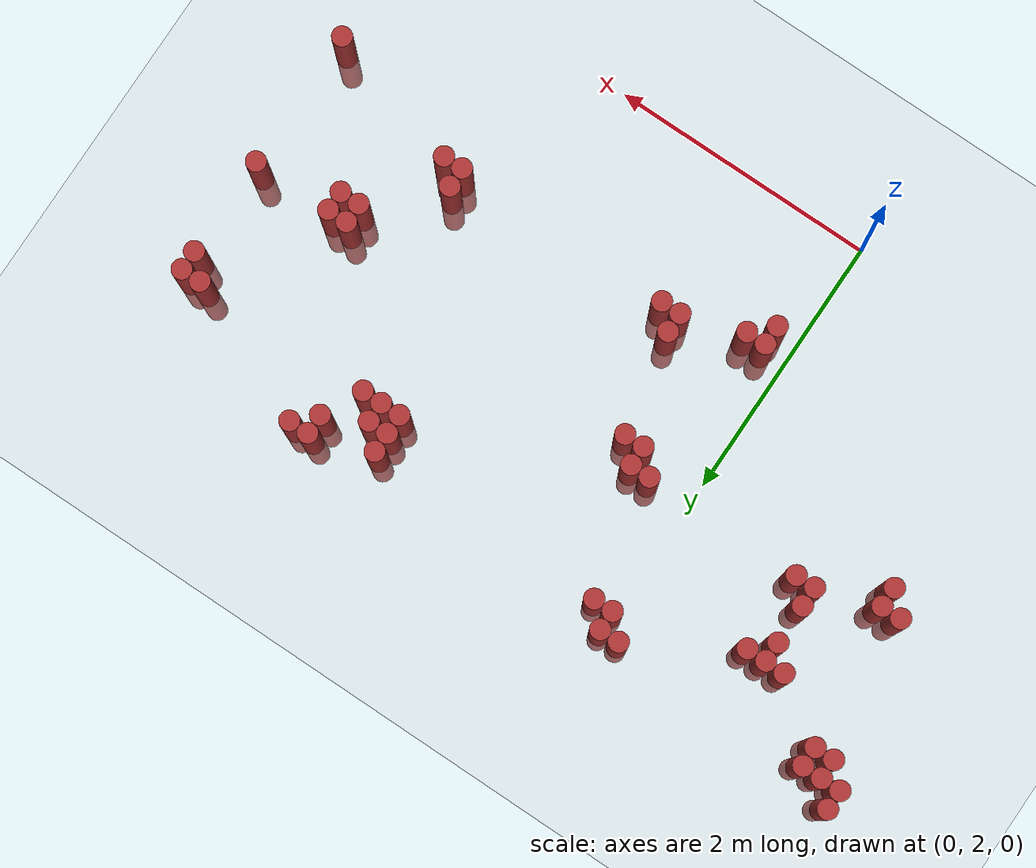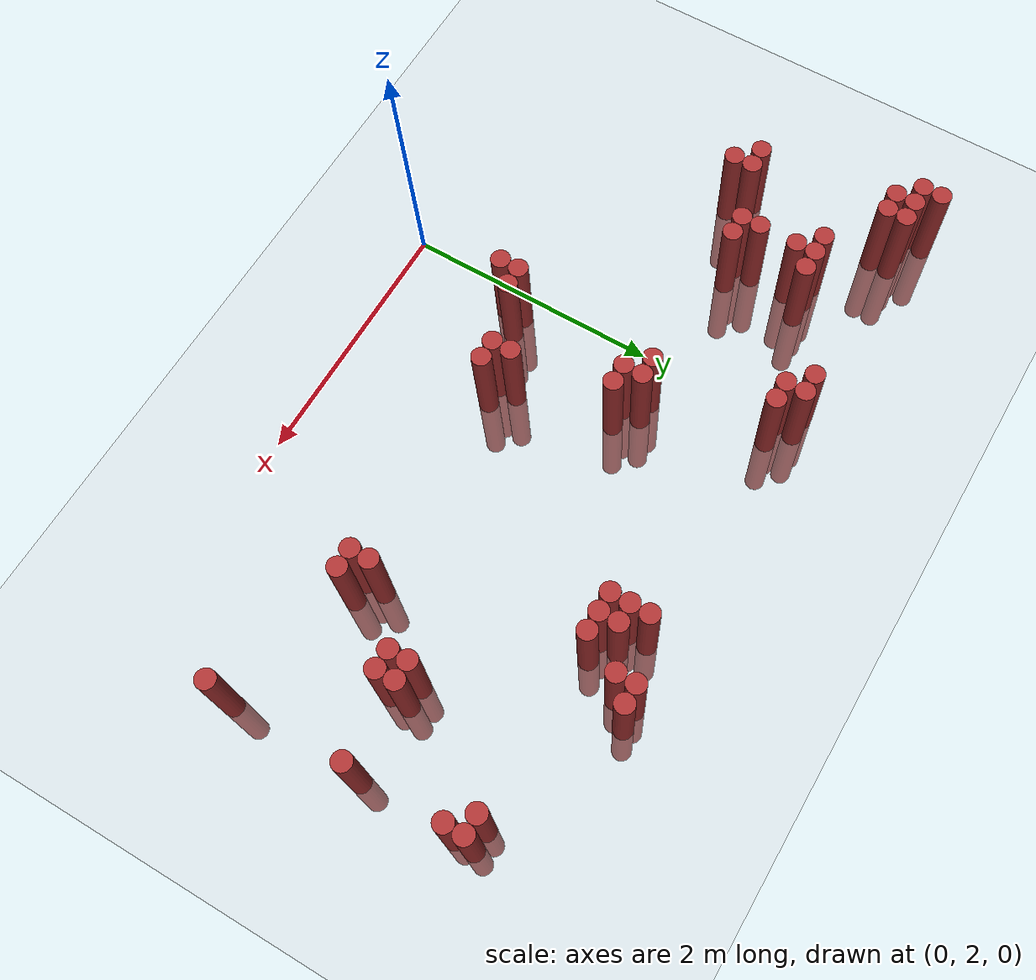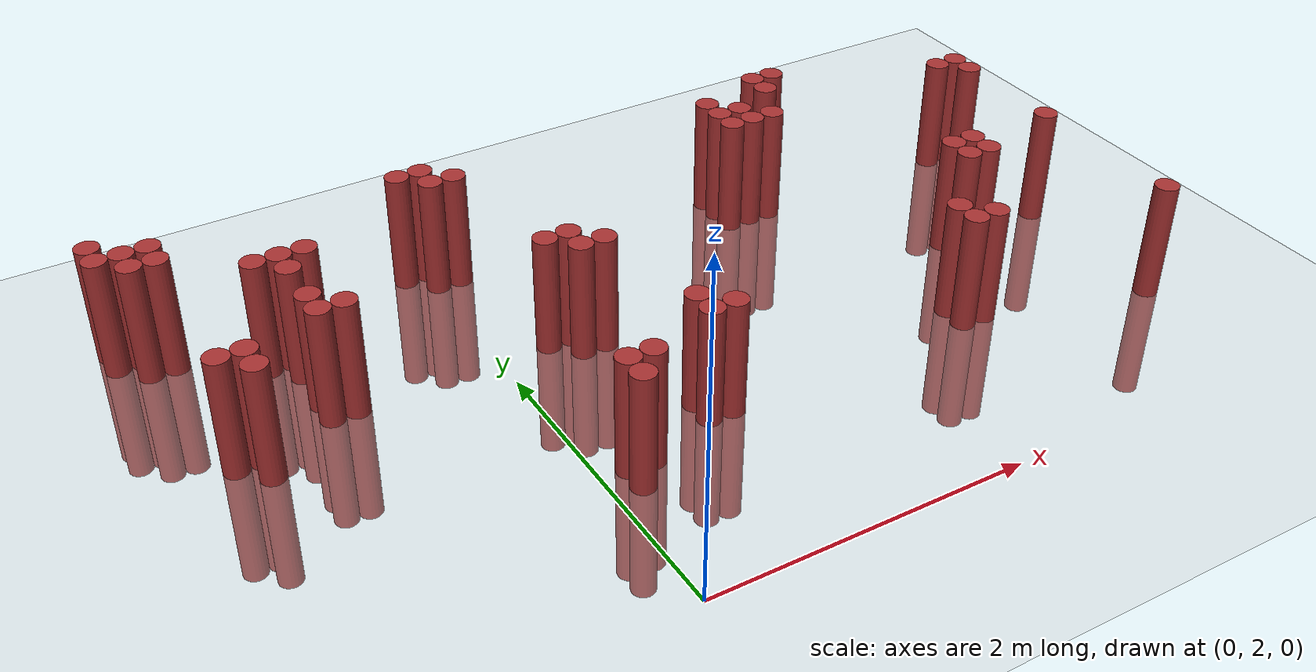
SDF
<sdf version="1.6">
 <world name="default">
  <model name="ground_plane">
   <static>1</static>
   <link name="link">
    <collision name="collision">
     <geometry><plane><normal>0 0 1</normal><size>100 100</size></plane></geometry>
     <surface><friction><ode><mu>100</mu><mu2>50</mu2></ode></friction></surface>
    </collision>
    <visual name="visual">
     <cast_shadows>0</cast_shadows>
     <geometry><plane><normal>0 0 1</normal><size>100 100</size></plane></geometry>
     <material>
      <script><uri>file://media/materials/scripts/gazebo.material</uri><name>Gazebo/Grey</name></script>
     </material>
    </visual>
   </link>
  </model>
  <model name="unit_cylinder_313">
   <static>1</static>
   <pose>-1.925000 5.275000 0.000000 0.000000 0.000000 0.000000</pose>
   <link name="link">
    <inertial>
     <mass>1</mass>
     <inertia><ixx>0.145833</ixx><ixy>0</ixy><ixz>0</ixz><iyy>0.145833</iyy><iyz>0</iyz><izz>0.125</izz></inertia>
    </inertial>
    <collision name="collision">
     <geometry><cylinder><radius>0.075000</radius><length>1.5</length></cylinder></geometry>
    </collision>
    <visual name="visual">
     <geometry><cylinder><radius>0.075000</radius><length>1.5</length></cylinder></geometry>
     <material>
      <ambient>0.648000 0.192000 0.192000 1</ambient>
      <diffuse>0.648000 0.192000 0.192000 1</diffuse>
     </material>
     <material>
      <script><name>Gazebo/Grey</name><uri>file://media/materials/scripts/gazebo.material</uri></script>
     </material>
    </visual>
   </link>
  </model>
  <model name="unit_cylinder_314">
   <static>1</static>
   <pose>-1.925000 5.425000 0.000000 0.000000 0.000000 0.000000</pose>
   <link name="link">
    <inertial>
     <mass>1</mass>
     <inertia><ixx>0.145833</ixx><ixy>0</ixy><ixz>0</ixz><iyy>0.145833</iyy><iyz>0</iyz><izz>0.125</izz></inertia>
    </inertial>
    <collision name="collision">
     <geometry><cylinder><radius>0.075000</radius><length>1.5</length></cylinder></geometry>
    </collision>
    <visual name="visual">
     <geometry><cylinder><radius>0.075000</radius><length>1.5</length></cylinder></geometry>
     <material>
      <ambient>0.648000 0.192000 0.192000 1</ambient>
      <diffuse>0.648000 0.192000 0.192000 1</diffuse>
     </material>
     <material>
      <script><name>Gazebo/Grey</name><uri>file://media/materials/scripts/gazebo.material</uri></script>
     </material>
    </visual>
   </link>
  </model>
  <model name="unit_cylinder_322">
   <static>1</static>
   <pose>-1.775000 5.125000 0.000000 0.000000 0.000000 0.000000</pose>
   <link name="link">
    <inertial>
     <mass>1</mass>
     <inertia><ixx>0.145833</ixx><ixy>0</ixy><ixz>0</ixz><iyy>0.145833</iyy><iyz>0</iyz><izz>0.125</izz></inertia>
    </inertial>
    <collision name="collision">
     <geometry><cylinder><radius>0.075000</radius><length>1.5</length></cylinder></geometry>
    </collision>
    <visual name="visual">
     <geometry><cylinder><radius>0.075000</radius><length>1.5</length></cylinder></geometry>
     <material>
      <ambient>0.648000 0.192000 0.192000 1</ambient>
      <diffuse>0.648000 0.192000 0.192000 1</diffuse>
     </material>
     <material>
      <script><name>Gazebo/Grey</name><uri>file://media/materials/scripts/gazebo.material</uri></script>
     </material>
    </visual>
   </link>
  </model>
  <model name="unit_cylinder_323">
   <static>1</static>
   <pose>-1.775000 5.275000 0.000000 0.000000 0.000000 0.000000</pose>
   <link name="link">
    <inertial>
     <mass>1</mass>
     <inertia><ixx>0.145833</ixx><ixy>0</ixy><ixz>0</ixz><iyy>0.145833</iyy><iyz>0</iyz><izz>0.125</izz></inertia>
    </inertial>
    <collision name="collision">
     <geometry><cylinder><radius>0.075000</radius><length>1.5</length></cylinder></geometry>
    </collision>
    <visual name="visual">
     <geometry><cylinder><radius>0.075000</radius><length>1.5</length></cylinder></geometry>
     <material>
      <ambient>0.648000 0.192000 0.192000 1</ambient>
      <diffuse>0.648000 0.192000 0.192000 1</diffuse>
     </material>
     <material>
      <script><name>Gazebo/Grey</name><uri>file://media/materials/scripts/gazebo.material</uri></script>
     </material>
    </visual>
   </link>
  </model>
  <model name="unit_cylinder_329">
   <static>1</static>
   <pose>-1.625000 4.075000 0.000000 0.000000 0.000000 0.000000</pose>
   <link name="link">
    <inertial>
     <mass>1</mass>
     <inertia><ixx>0.145833</ixx><ixy>0</ixy><ixz>0</ixz><iyy>0.145833</iyy><iyz>0</iyz><izz>0.125</izz></inertia>
    </inertial>
    <collision name="collision">
     <geometry><cylinder><radius>0.075000</radius><length>1.5</length></cylinder></geometry>
    </collision>
    <visual name="visual">
     <geometry><cylinder><radius>0.075000</radius><length>1.5</length></cylinder></geometry>
     <material>
      <ambient>0.648000 0.192000 0.192000 1</ambient>
      <diffuse>0.648000 0.192000 0.192000 1</diffuse>
     </material>
     <material>
      <script><name>Gazebo/Grey</name><uri>file://media/materials/scripts/gazebo.material</uri></script>
     </material>
    </visual>
   </link>
  </model>
  <model name="unit_cylinder_330">
   <static>1</static>
   <pose>-1.625000 5.125000 0.000000 0.000000 0.000000 0.000000</pose>
   <link name="link">
    <inertial>
     <mass>1</mass>
     <inertia><ixx>0.145833</ixx><ixy>0</ixy><ixz>0</ixz><iyy>0.145833</iyy><iyz>0</iyz><izz>0.125</izz></inertia>
    </inertial>
    <collision name="collision">
     <geometry><cylinder><radius>0.075000</radius><length>1.5</length></cylinder></geometry>
    </collision>
    <visual name="visual">
     <geometry><cylinder><radius>0.075000</radius><length>1.5</length></cylinder></geometry>
     <material>
      <ambient>0.648000 0.192000 0.192000 1</ambient>
      <diffuse>0.648000 0.192000 0.192000 1</diffuse>
     </material>
     <material>
      <script><name>Gazebo/Grey</name><uri>file://media/materials/scripts/gazebo.material</uri></script>
     </material>
    </visual>
   </link>
  </model>
  <model name="unit_cylinder_331">
   <static>1</static>
   <pose>-1.625000 5.275000 0.000000 0.000000 0.000000 0.000000</pose>
   <link name="link">
    <inertial>
     <mass>1</mass>
     <inertia><ixx>0.145833</ixx><ixy>0</ixy><ixz>0</ixz><iyy>0.145833</iyy><iyz>0</iyz><izz>0.125</izz></inertia>
    </inertial>
    <collision name="collision">
     <geometry><cylinder><radius>0.075000</radius><length>1.5</length></cylinder></geometry>
    </collision>
    <visual name="visual">
     <geometry><cylinder><radius>0.075000</radius><length>1.5</length></cylinder></geometry>
     <material>
      <ambient>0.648000 0.192000 0.192000 1</ambient>
      <diffuse>0.648000 0.192000 0.192000 1</diffuse>
     </material>
     <material>
      <script><name>Gazebo/Grey</name><uri>file://media/materials/scripts/gazebo.material</uri></script>
     </material>
    </visual>
   </link>
  </model>
  <model name="unit_cylinder_334">
   <static>1</static>
   <pose>-1.475000 3.925000 0.000000 0.000000 0.000000 0.000000</pose>
   <link name="link">
    <inertial>
     <mass>1</mass>
     <inertia><ixx>0.145833</ixx><ixy>0</ixy><ixz>0</ixz><iyy>0.145833</iyy><iyz>0</iyz><izz>0.125</izz></inertia>
    </inertial>
    <collision name="collision">
     <geometry><cylinder><radius>0.075000</radius><length>1.5</length></cylinder></geometry>
    </collision>
    <visual name="visual">
     <geometry><cylinder><radius>0.075000</radius><length>1.5</length></cylinder></geometry>
     <material>
      <ambient>0.648000 0.192000 0.192000 1</ambient>
      <diffuse>0.648000 0.192000 0.192000 1</diffuse>
     </material>
     <material>
      <script><name>Gazebo/Grey</name><uri>file://media/materials/scripts/gazebo.material</uri></script>
     </material>
    </visual>
   </link>
  </model>
  <model name="unit_cylinder_335">
   <static>1</static>
   <pose>-1.475000 4.075000 0.000000 0.000000 0.000000 0.000000</pose>
   <link name="link">
    <inertial>
     <mass>1</mass>
     <inertia><ixx>0.145833</ixx><ixy>0</ixy><ixz>0</ixz><iyy>0.145833</iyy><iyz>0</iyz><izz>0.125</izz></inertia>
    </inertial>
    <collision name="collision">
     <geometry><cylinder><radius>0.075000</radius><length>1.5</length></cylinder></geometry>
    </collision>
    <visual name="visual">
     <geometry><cylinder><radius>0.075000</radius><length>1.5</length></cylinder></geometry>
     <material>
      <ambient>0.648000 0.192000 0.192000 1</ambient>
      <diffuse>0.648000 0.192000 0.192000 1</diffuse>
     </material>
     <material>
      <script><name>Gazebo/Grey</name><uri>file://media/materials/scripts/gazebo.material</uri></script>
     </material>
    </visual>
   </link>
  </model>
  <model name="unit_cylinder_336">
   <static>1</static>
   <pose>-1.175000 4.825000 0.000000 0.000000 0.000000 0.000000</pose>
   <link name="link">
    <inertial>
     <mass>1</mass>
     <inertia><ixx>0.145833</ixx><ixy>0</ixy><ixz>0</ixz><iyy>0.145833</iyy><iyz>0</iyz><izz>0.125</izz></inertia>
    </inertial>
    <collision name="collision">
     <geometry><cylinder><radius>0.075000</radius><length>1.5</length></cylinder></geometry>
    </collision>
    <visual name="visual">
     <geometry><cylinder><radius>0.075000</radius><length>1.5</length></cylinder></geometry>
     <material>
      <ambient>0.648000 0.192000 0.192000 1</ambient>
      <diffuse>0.648000 0.192000 0.192000 1</diffuse>
     </material>
     <material>
      <script><name>Gazebo/Grey</name><uri>file://media/materials/scripts/gazebo.material</uri></script>
     </material>
    </visual>
   </link>
  </model>
  <model name="unit_cylinder_337">
   <static>1</static>
   <pose>-1.025000 4.225000 0.000000 0.000000 0.000000 0.000000</pose>
   <link name="link">
    <inertial>
     <mass>1</mass>
     <inertia><ixx>0.145833</ixx><ixy>0</ixy><ixz>0</ixz><iyy>0.145833</iyy><iyz>0</iyz><izz>0.125</izz></inertia>
    </inertial>
    <collision name="collision">
     <geometry><cylinder><radius>0.075000</radius><length>1.5</length></cylinder></geometry>
    </collision>
    <visual name="visual">
     <geometry><cylinder><radius>0.075000</radius><length>1.5</length></cylinder></geometry>
     <material>
      <ambient>0.648000 0.192000 0.192000 1</ambient>
      <diffuse>0.648000 0.192000 0.192000 1</diffuse>
     </material>
     <material>
      <script><name>Gazebo/Grey</name><uri>file://media/materials/scripts/gazebo.material</uri></script>
     </material>
    </visual>
   </link>
  </model>
  <model name="unit_cylinder_338">
   <static>1</static>
   <pose>-1.025000 4.375000 0.000000 0.000000 0.000000 0.000000</pose>
   <link name="link">
    <inertial>
     <mass>1</mass>
     <inertia><ixx>0.145833</ixx><ixy>0</ixy><ixz>0</ixz><iyy>0.145833</iyy><iyz>0</iyz><izz>0.125</izz></inertia>
    </inertial>
    <collision name="collision">
     <geometry><cylinder><radius>0.075000</radius><length>1.5</length></cylinder></geometry>
    </collision>
    <visual name="visual">
     <geometry><cylinder><radius>0.075000</radius><length>1.5</length></cylinder></geometry>
     <material>
      <ambient>0.648000 0.192000 0.192000 1</ambient>
      <diffuse>0.648000 0.192000 0.192000 1</diffuse>
     </material>
     <material>
      <script><name>Gazebo/Grey</name><uri>file://media/materials/scripts/gazebo.material</uri></script>
     </material>
    </visual>
   </link>
  </model>
  <model name="unit_cylinder_339">
   <static>1</static>
   <pose>-1.025000 4.675000 0.000000 0.000000 0.000000 0.000000</pose>
   <link name="link">
    <inertial>
     <mass>1</mass>
     <inertia><ixx>0.145833</ixx><ixy>0</ixy><ixz>0</ixz><iyy>0.145833</iyy><iyz>0</iyz><izz>0.125</izz></inertia>
    </inertial>
    <collision name="collision">
     <geometry><cylinder><radius>0.075000</radius><length>1.5</length></cylinder></geometry>
    </collision>
    <visual name="visual">
     <geometry><cylinder><radius>0.075000</radius><length>1.5</length></cylinder></geometry>
     <material>
      <ambient>0.648000 0.192000 0.192000 1</ambient>
      <diffuse>0.648000 0.192000 0.192000 1</diffuse>
     </material>
     <material>
      <script><name>Gazebo/Grey</name><uri>file://media/materials/scripts/gazebo.material</uri></script>
     </material>
    </visual>
   </link>
  </model>
  <model name="unit_cylinder_340">
   <static>1</static>
   <pose>-1.025000 4.825000 0.000000 0.000000 0.000000 0.000000</pose>
   <link name="link">
    <inertial>
     <mass>1</mass>
     <inertia><ixx>0.145833</ixx><ixy>0</ixy><ixz>0</ixz><iyy>0.145833</iyy><iyz>0</iyz><izz>0.125</izz></inertia>
    </inertial>
    <collision name="collision">
     <geometry><cylinder><radius>0.075000</radius><length>1.5</length></cylinder></geometry>
    </collision>
    <visual name="visual">
     <geometry><cylinder><radius>0.075000</radius><length>1.5</length></cylinder></geometry>
     <material>
      <ambient>0.648000 0.192000 0.192000 1</ambient>
      <diffuse>0.648000 0.192000 0.192000 1</diffuse>
     </material>
     <material>
      <script><name>Gazebo/Grey</name><uri>file://media/materials/scripts/gazebo.material</uri></script>
     </material>
    </visual>
   </link>
  </model>
  <model name="unit_cylinder_341">
   <static>1</static>
   <pose>-0.875000 4.225000 0.000000 0.000000 0.000000 0.000000</pose>
   <link name="link">
    <inertial>
     <mass>1</mass>
     <inertia><ixx>0.145833</ixx><ixy>0</ixy><ixz>0</ixz><iyy>0.145833</iyy><iyz>0</iyz><izz>0.125</izz></inertia>
    </inertial>
    <collision name="collision">
     <geometry><cylinder><radius>0.075000</radius><length>1.5</length></cylinder></geometry>
    </collision>
    <visual name="visual">
     <geometry><cylinder><radius>0.075000</radius><length>1.5</length></cylinder></geometry>
     <material>
      <ambient>0.648000 0.192000 0.192000 1</ambient>
      <diffuse>0.648000 0.192000 0.192000 1</diffuse>
     </material>
     <material>
      <script><name>Gazebo/Grey</name><uri>file://media/materials/scripts/gazebo.material</uri></script>
     </material>
    </visual>
   </link>
  </model>
  <model name="unit_cylinder_342">
   <static>1</static>
   <pose>-0.875000 4.825000 0.000000 0.000000 0.000000 0.000000</pose>
   <link name="link">
    <inertial>
     <mass>1</mass>
     <inertia><ixx>0.145833</ixx><ixy>0</ixy><ixz>0</ixz><iyy>0.145833</iyy><iyz>0</iyz><izz>0.125</izz></inertia>
    </inertial>
    <collision name="collision">
     <geometry><cylinder><radius>0.075000</radius><length>1.5</length></cylinder></geometry>
    </collision>
    <visual name="visual">
     <geometry><cylinder><radius>0.075000</radius><length>1.5</length></cylinder></geometry>
     <material>
      <ambient>0.648000 0.192000 0.192000 1</ambient>
      <diffuse>0.648000 0.192000 0.192000 1</diffuse>
     </material>
     <material>
      <script><name>Gazebo/Grey</name><uri>file://media/materials/scripts/gazebo.material</uri></script>
     </material>
    </visual>
   </link>
  </model>
  <model name="unit_cylinder_347">
   <static>1</static>
   <pose>-0.125000 5.275000 0.000000 0.000000 0.000000 0.000000</pose>
   <link name="link">
    <inertial>
     <mass>1</mass>
     <inertia><ixx>0.145833</ixx><ixy>0</ixy><ixz>0</ixz><iyy>0.145833</iyy><iyz>0</iyz><izz>0.125</izz></inertia>
    </inertial>
    <collision name="collision">
     <geometry><cylinder><radius>0.075000</radius><length>1.5</length></cylinder></geometry>
    </collision>
    <visual name="visual">
     <geometry><cylinder><radius>0.075000</radius><length>1.5</length></cylinder></geometry>
     <material>
      <ambient>0.648000 0.192000 0.192000 1</ambient>
      <diffuse>0.648000 0.192000 0.192000 1</diffuse>
     </material>
     <material>
      <script><name>Gazebo/Grey</name><uri>file://media/materials/scripts/gazebo.material</uri></script>
     </material>
    </visual>
   </link>
  </model>
  <model name="unit_cylinder_352">
   <static>1</static>
   <pose>0.025000 5.125000 0.000000 0.000000 0.000000 0.000000</pose>
   <link name="link">
    <inertial>
     <mass>1</mass>
     <inertia><ixx>0.145833</ixx><ixy>0</ixy><ixz>0</ixz><iyy>0.145833</iyy><iyz>0</iyz><izz>0.125</izz></inertia>
    </inertial>
    <collision name="collision">
     <geometry><cylinder><radius>0.075000</radius><length>1.5</length></cylinder></geometry>
    </collision>
    <visual name="visual">
     <geometry><cylinder><radius>0.075000</radius><length>1.5</length></cylinder></geometry>
     <material>
      <ambient>0.648000 0.192000 0.192000 1</ambient>
      <diffuse>0.648000 0.192000 0.192000 1</diffuse>
     </material>
     <material>
      <script><name>Gazebo/Grey</name><uri>file://media/materials/scripts/gazebo.material</uri></script>
     </material>
    </visual>
   </link>
  </model>
  <model name="unit_cylinder_353">
   <static>1</static>
   <pose>0.025000 5.275000 0.000000 0.000000 0.000000 0.000000</pose>
   <link name="link">
    <inertial>
     <mass>1</mass>
     <inertia><ixx>0.145833</ixx><ixy>0</ixy><ixz>0</ixz><iyy>0.145833</iyy><iyz>0</iyz><izz>0.125</izz></inertia>
    </inertial>
    <collision name="collision">
     <geometry><cylinder><radius>0.075000</radius><length>1.5</length></cylinder></geometry>
    </collision>
    <visual name="visual">
     <geometry><cylinder><radius>0.075000</radius><length>1.5</length></cylinder></geometry>
     <material>
      <ambient>0.648000 0.192000 0.192000 1</ambient>
      <diffuse>0.648000 0.192000 0.192000 1</diffuse>
     </material>
     <material>
      <script><name>Gazebo/Grey</name><uri>file://media/materials/scripts/gazebo.material</uri></script>
     </material>
    </visual>
   </link>
  </model>
  <model name="unit_cylinder_356">
   <static>1</static>
   <pose>0.175000 2.875000 0.000000 0.000000 0.000000 0.000000</pose>
   <link name="link">
    <inertial>
     <mass>1</mass>
     <inertia><ixx>0.145833</ixx><ixy>0</ixy><ixz>0</ixz><iyy>0.145833</iyy><iyz>0</iyz><izz>0.125</izz></inertia>
    </inertial>
    <collision name="collision">
     <geometry><cylinder><radius>0.075000</radius><length>1.5</length></cylinder></geometry>
    </collision>
    <visual name="visual">
     <geometry><cylinder><radius>0.075000</radius><length>1.5</length></cylinder></geometry>
     <material>
      <ambient>0.648000 0.192000 0.192000 1</ambient>
      <diffuse>0.648000 0.192000 0.192000 1</diffuse>
     </material>
     <material>
      <script><name>Gazebo/Grey</name><uri>file://media/materials/scripts/gazebo.material</uri></script>
     </material>
    </visual>
   </link>
  </model>
  <model name="unit_cylinder_357">
   <static>1</static>
   <pose>0.175000 3.025000 0.000000 0.000000 0.000000 0.000000</pose>
   <link name="link">
    <inertial>
     <mass>1</mass>
     <inertia><ixx>0.145833</ixx><ixy>0</ixy><ixz>0</ixz><iyy>0.145833</iyy><iyz>0</iyz><izz>0.125</izz></inertia>
    </inertial>
    <collision name="collision">
     <geometry><cylinder><radius>0.075000</radius><length>1.5</length></cylinder></geometry>
    </collision>
    <visual name="visual">
     <geometry><cylinder><radius>0.075000</radius><length>1.5</length></cylinder></geometry>
     <material>
      <ambient>0.648000 0.192000 0.192000 1</ambient>
      <diffuse>0.648000 0.192000 0.192000 1</diffuse>
     </material>
     <material>
      <script><name>Gazebo/Grey</name><uri>file://media/materials/scripts/gazebo.material</uri></script>
     </material>
    </visual>
   </link>
  </model>
  <model name="unit_cylinder_358">
   <static>1</static>
   <pose>0.175000 5.125000 0.000000 0.000000 0.000000 0.000000</pose>
   <link name="link">
    <inertial>
     <mass>1</mass>
     <inertia><ixx>0.145833</ixx><ixy>0</ixy><ixz>0</ixz><iyy>0.145833</iyy><iyz>0</iyz><izz>0.125</izz></inertia>
    </inertial>
    <collision name="collision">
     <geometry><cylinder><radius>0.075000</radius><length>1.5</length></cylinder></geometry>
    </collision>
    <visual name="visual">
     <geometry><cylinder><radius>0.075000</radius><length>1.5</length></cylinder></geometry>
     <material>
      <ambient>0.648000 0.192000 0.192000 1</ambient>
      <diffuse>0.648000 0.192000 0.192000 1</diffuse>
     </material>
     <material>
      <script><name>Gazebo/Grey</name><uri>file://media/materials/scripts/gazebo.material</uri></script>
     </material>
    </visual>
   </link>
  </model>
  <model name="unit_cylinder_359">
   <static>1</static>
   <pose>0.325000 3.025000 0.000000 0.000000 0.000000 0.000000</pose>
   <link name="link">
    <inertial>
     <mass>1</mass>
     <inertia><ixx>0.145833</ixx><ixy>0</ixy><ixz>0</ixz><iyy>0.145833</iyy><iyz>0</iyz><izz>0.125</izz></inertia>
    </inertial>
    <collision name="collision">
     <geometry><cylinder><radius>0.075000</radius><length>1.5</length></cylinder></geometry>
    </collision>
    <visual name="visual">
     <geometry><cylinder><radius>0.075000</radius><length>1.5</length></cylinder></geometry>
     <material>
      <ambient>0.648000 0.192000 0.192000 1</ambient>
      <diffuse>0.648000 0.192000 0.192000 1</diffuse>
     </material>
     <material>
      <script><name>Gazebo/Grey</name><uri>file://media/materials/scripts/gazebo.material</uri></script>
     </material>
    </visual>
   </link>
  </model>
  <model name="unit_cylinder_360">
   <static>1</static>
   <pose>0.325000 4.225000 0.000000 0.000000 0.000000 0.000000</pose>
   <link name="link">
    <inertial>
     <mass>1</mass>
     <inertia><ixx>0.145833</ixx><ixy>0</ixy><ixz>0</ixz><iyy>0.145833</iyy><iyz>0</iyz><izz>0.125</izz></inertia>
    </inertial>
    <collision name="collision">
     <geometry><cylinder><radius>0.075000</radius><length>1.5</length></cylinder></geometry>
    </collision>
    <visual name="visual">
     <geometry><cylinder><radius>0.075000</radius><length>1.5</length></cylinder></geometry>
     <material>
      <ambient>0.648000 0.192000 0.192000 1</ambient>
      <diffuse>0.648000 0.192000 0.192000 1</diffuse>
     </material>
     <material>
      <script><name>Gazebo/Grey</name><uri>file://media/materials/scripts/gazebo.material</uri></script>
     </material>
    </visual>
   </link>
  </model>
  <model name="unit_cylinder_361">
   <static>1</static>
   <pose>0.475000 4.075000 0.000000 0.000000 0.000000 0.000000</pose>
   <link name="link">
    <inertial>
     <mass>1</mass>
     <inertia><ixx>0.145833</ixx><ixy>0</ixy><ixz>0</ixz><iyy>0.145833</iyy><iyz>0</iyz><izz>0.125</izz></inertia>
    </inertial>
    <collision name="collision">
     <geometry><cylinder><radius>0.075000</radius><length>1.5</length></cylinder></geometry>
    </collision>
    <visual name="visual">
     <geometry><cylinder><radius>0.075000</radius><length>1.5</length></cylinder></geometry>
     <material>
      <ambient>0.648000 0.192000 0.192000 1</ambient>
      <diffuse>0.648000 0.192000 0.192000 1</diffuse>
     </material>
     <material>
      <script><name>Gazebo/Grey</name><uri>file://media/materials/scripts/gazebo.material</uri></script>
     </material>
    </visual>
   </link>
  </model>
  <model name="unit_cylinder_362">
   <static>1</static>
   <pose>0.475000 4.225000 0.000000 0.000000 0.000000 0.000000</pose>
   <link name="link">
    <inertial>
     <mass>1</mass>
     <inertia><ixx>0.145833</ixx><ixy>0</ixy><ixz>0</ixz><iyy>0.145833</iyy><iyz>0</iyz><izz>0.125</izz></inertia>
    </inertial>
    <collision name="collision">
     <geometry><cylinder><radius>0.075000</radius><length>1.5</length></cylinder></geometry>
    </collision>
    <visual name="visual">
     <geometry><cylinder><radius>0.075000</radius><length>1.5</length></cylinder></geometry>
     <material>
      <ambient>0.648000 0.192000 0.192000 1</ambient>
      <diffuse>0.648000 0.192000 0.192000 1</diffuse>
     </material>
     <material>
      <script><name>Gazebo/Grey</name><uri>file://media/materials/scripts/gazebo.material</uri></script>
     </material>
    </visual>
   </link>
  </model>
  <model name="unit_cylinder_363">
   <static>1</static>
   <pose>0.625000 4.075000 0.000000 0.000000 0.000000 0.000000</pose>
   <link name="link">
    <inertial>
     <mass>1</mass>
     <inertia><ixx>0.145833</ixx><ixy>0</ixy><ixz>0</ixz><iyy>0.145833</iyy><iyz>0</iyz><izz>0.125</izz></inertia>
    </inertial>
    <collision name="collision">
     <geometry><cylinder><radius>0.075000</radius><length>1.5</length></cylinder></geometry>
    </collision>
    <visual name="visual">
     <geometry><cylinder><radius>0.075000</radius><length>1.5</length></cylinder></geometry>
     <material>
      <ambient>0.648000 0.192000 0.192000 1</ambient>
      <diffuse>0.648000 0.192000 0.192000 1</diffuse>
     </material>
     <material>
      <script><name>Gazebo/Grey</name><uri>file://media/materials/scripts/gazebo.material</uri></script>
     </material>
    </visual>
   </link>
  </model>
  <model name="unit_cylinder_364">
   <static>1</static>
   <pose>0.775000 3.175000 0.000000 0.000000 0.000000 0.000000</pose>
   <link name="link">
    <inertial>
     <mass>1</mass>
     <inertia><ixx>0.145833</ixx><ixy>0</ixy><ixz>0</ixz><iyy>0.145833</iyy><iyz>0</iyz><izz>0.125</izz></inertia>
    </inertial>
    <collision name="collision">
     <geometry><cylinder><radius>0.075000</radius><length>1.5</length></cylinder></geometry>
    </collision>
    <visual name="visual">
     <geometry><cylinder><radius>0.075000</radius><length>1.5</length></cylinder></geometry>
     <material>
      <ambient>0.648000 0.192000 0.192000 1</ambient>
      <diffuse>0.648000 0.192000 0.192000 1</diffuse>
     </material>
     <material>
      <script><name>Gazebo/Grey</name><uri>file://media/materials/scripts/gazebo.material</uri></script>
     </material>
    </visual>
   </link>
  </model>
  <model name="unit_cylinder_365">
   <static>1</static>
   <pose>0.775000 3.325000 0.000000 0.000000 0.000000 0.000000</pose>
   <link name="link">
    <inertial>
     <mass>1</mass>
     <inertia><ixx>0.145833</ixx><ixy>0</ixy><ixz>0</ixz><iyy>0.145833</iyy><iyz>0</iyz><izz>0.125</izz></inertia>
    </inertial>
    <collision name="collision">
     <geometry><cylinder><radius>0.075000</radius><length>1.5</length></cylinder></geometry>
    </collision>
    <visual name="visual">
     <geometry><cylinder><radius>0.075000</radius><length>1.5</length></cylinder></geometry>
     <material>
      <ambient>0.648000 0.192000 0.192000 1</ambient>
      <diffuse>0.648000 0.192000 0.192000 1</diffuse>
     </material>
     <material>
      <script><name>Gazebo/Grey</name><uri>file://media/materials/scripts/gazebo.material</uri></script>
     </material>
    </visual>
   </link>
  </model>
  <model name="unit_cylinder_370">
   <static>1</static>
   <pose>0.925000 3.175000 0.000000 0.000000 0.000000 0.000000</pose>
   <link name="link">
    <inertial>
     <mass>1</mass>
     <inertia><ixx>0.145833</ixx><ixy>0</ixy><ixz>0</ixz><iyy>0.145833</iyy><iyz>0</iyz><izz>0.125</izz></inertia>
    </inertial>
    <collision name="collision">
     <geometry><cylinder><radius>0.075000</radius><length>1.5</length></cylinder></geometry>
    </collision>
    <visual name="visual">
     <geometry><cylinder><radius>0.075000</radius><length>1.5</length></cylinder></geometry>
     <material>
      <ambient>0.648000 0.192000 0.192000 1</ambient>
      <diffuse>0.648000 0.192000 0.192000 1</diffuse>
     </material>
     <material>
      <script><name>Gazebo/Grey</name><uri>file://media/materials/scripts/gazebo.material</uri></script>
     </material>
    </visual>
   </link>
  </model>
  <model name="unit_cylinder_381">
   <static>1</static>
   <pose>1.975000 4.825000 0.000000 0.000000 0.000000 0.000000</pose>
   <link name="link">
    <inertial>
     <mass>1</mass>
     <inertia><ixx>0.145833</ixx><ixy>0</ixy><ixz>0</ixz><iyy>0.145833</iyy><iyz>0</iyz><izz>0.125</izz></inertia>
    </inertial>
    <collision name="collision">
     <geometry><cylinder><radius>0.075000</radius><length>1.5</length></cylinder></geometry>
    </collision>
    <visual name="visual">
     <geometry><cylinder><radius>0.075000</radius><length>1.5</length></cylinder></geometry>
     <material>
      <ambient>0.648000 0.192000 0.192000 1</ambient>
      <diffuse>0.648000 0.192000 0.192000 1</diffuse>
     </material>
     <material>
      <script><name>Gazebo/Grey</name><uri>file://media/materials/scripts/gazebo.material</uri></script>
     </material>
    </visual>
   </link>
  </model>
  <model name="unit_cylinder_382">
   <static>1</static>
   <pose>1.975000 4.975000 0.000000 0.000000 0.000000 0.000000</pose>
   <link name="link">
    <inertial>
     <mass>1</mass>
     <inertia><ixx>0.145833</ixx><ixy>0</ixy><ixz>0</ixz><iyy>0.145833</iyy><iyz>0</iyz><izz>0.125</izz></inertia>
    </inertial>
    <collision name="collision">
     <geometry><cylinder><radius>0.075000</radius><length>1.5</length></cylinder></geometry>
    </collision>
    <visual name="visual">
     <geometry><cylinder><radius>0.075000</radius><length>1.5</length></cylinder></geometry>
     <material>
      <ambient>0.648000 0.192000 0.192000 1</ambient>
      <diffuse>0.648000 0.192000 0.192000 1</diffuse>
     </material>
     <material>
      <script><name>Gazebo/Grey</name><uri>file://media/materials/scripts/gazebo.material</uri></script>
     </material>
    </visual>
   </link>
  </model>
  <model name="unit_cylinder_383">
   <static>1</static>
   <pose>1.975000 5.125000 0.000000 0.000000 0.000000 0.000000</pose>
   <link name="link">
    <inertial>
     <mass>1</mass>
     <inertia><ixx>0.145833</ixx><ixy>0</ixy><ixz>0</ixz><iyy>0.145833</iyy><iyz>0</iyz><izz>0.125</izz></inertia>
    </inertial>
    <collision name="collision">
     <geometry><cylinder><radius>0.075000</radius><length>1.5</length></cylinder></geometry>
    </collision>
    <visual name="visual">
     <geometry><cylinder><radius>0.075000</radius><length>1.5</length></cylinder></geometry>
     <material>
      <ambient>0.648000 0.192000 0.192000 1</ambient>
      <diffuse>0.648000 0.192000 0.192000 1</diffuse>
     </material>
     <material>
      <script><name>Gazebo/Grey</name><uri>file://media/materials/scripts/gazebo.material</uri></script>
     </material>
    </visual>
   </link>
  </model>
  <model name="unit_cylinder_384">
   <static>1</static>
   <pose>2.125000 4.825000 0.000000 0.000000 0.000000 0.000000</pose>
   <link name="link">
    <inertial>
     <mass>1</mass>
     <inertia><ixx>0.145833</ixx><ixy>0</ixy><ixz>0</ixz><iyy>0.145833</iyy><iyz>0</iyz><izz>0.125</izz></inertia>
    </inertial>
    <collision name="collision">
     <geometry><cylinder><radius>0.075000</radius><length>1.5</length></cylinder></geometry>
    </collision>
    <visual name="visual">
     <geometry><cylinder><radius>0.075000</radius><length>1.5</length></cylinder></geometry>
     <material>
      <ambient>0.648000 0.192000 0.192000 1</ambient>
      <diffuse>0.648000 0.192000 0.192000 1</diffuse>
     </material>
     <material>
      <script><name>Gazebo/Grey</name><uri>file://media/materials/scripts/gazebo.material</uri></script>
     </material>
    </visual>
   </link>
  </model>
  <model name="unit_cylinder_385">
   <static>1</static>
   <pose>2.125000 4.975000 0.000000 0.000000 0.000000 0.000000</pose>
   <link name="link">
    <inertial>
     <mass>1</mass>
     <inertia><ixx>0.145833</ixx><ixy>0</ixy><ixz>0</ixz><iyy>0.145833</iyy><iyz>0</iyz><izz>0.125</izz></inertia>
    </inertial>
    <collision name="collision">
     <geometry><cylinder><radius>0.075000</radius><length>1.5</length></cylinder></geometry>
    </collision>
    <visual name="visual">
     <geometry><cylinder><radius>0.075000</radius><length>1.5</length></cylinder></geometry>
     <material>
      <ambient>0.648000 0.192000 0.192000 1</ambient>
      <diffuse>0.648000 0.192000 0.192000 1</diffuse>
     </material>
     <material>
      <script><name>Gazebo/Grey</name><uri>file://media/materials/scripts/gazebo.material</uri></script>
     </material>
    </visual>
   </link>
  </model>
  <model name="unit_cylinder_387">
   <static>1</static>
   <pose>2.275000 4.825000 0.000000 0.000000 0.000000 0.000000</pose>
   <link name="link">
    <inertial>
     <mass>1</mass>
     <inertia><ixx>0.145833</ixx><ixy>0</ixy><ixz>0</ixz><iyy>0.145833</iyy><iyz>0</iyz><izz>0.125</izz></inertia>
    </inertial>
    <collision name="collision">
     <geometry><cylinder><radius>0.075000</radius><length>1.5</length></cylinder></geometry>
    </collision>
    <visual name="visual">
     <geometry><cylinder><radius>0.075000</radius><length>1.5</length></cylinder></geometry>
     <material>
      <ambient>0.648000 0.192000 0.192000 1</ambient>
      <diffuse>0.648000 0.192000 0.192000 1</diffuse>
     </material>
     <material>
      <script><name>Gazebo/Grey</name><uri>file://media/materials/scripts/gazebo.material</uri></script>
     </material>
    </visual>
   </link>
  </model>
  <model name="unit_cylinder_392">
   <static>1</static>
   <pose>2.425000 5.125000 0.000000 0.000000 0.000000 0.000000</pose>
   <link name="link">
    <inertial>
     <mass>1</mass>
     <inertia><ixx>0.145833</ixx><ixy>0</ixy><ixz>0</ixz><iyy>0.145833</iyy><iyz>0</iyz><izz>0.125</izz></inertia>
    </inertial>
    <collision name="collision">
     <geometry><cylinder><radius>0.075000</radius><length>1.5</length></cylinder></geometry>
    </collision>
    <visual name="visual">
     <geometry><cylinder><radius>0.075000</radius><length>1.5</length></cylinder></geometry>
     <material>
      <ambient>0.648000 0.192000 0.192000 1</ambient>
      <diffuse>0.648000 0.192000 0.192000 1</diffuse>
     </material>
     <material>
      <script><name>Gazebo/Grey</name><uri>file://media/materials/scripts/gazebo.material</uri></script>
     </material>
    </visual>
   </link>
  </model>
  <model name="unit_cylinder_393">
   <static>1</static>
   <pose>2.425000 5.275000 0.000000 0.000000 0.000000 0.000000</pose>
   <link name="link">
    <inertial>
     <mass>1</mass>
     <inertia><ixx>0.145833</ixx><ixy>0</ixy><ixz>0</ixz><iyy>0.145833</iyy><iyz>0</iyz><izz>0.125</izz></inertia>
    </inertial>
    <collision name="collision">
     <geometry><cylinder><radius>0.075000</radius><length>1.5</length></cylinder></geometry>
    </collision>
    <visual name="visual">
     <geometry><cylinder><radius>0.075000</radius><length>1.5</length></cylinder></geometry>
     <material>
      <ambient>0.648000 0.192000 0.192000 1</ambient>
      <diffuse>0.648000 0.192000 0.192000 1</diffuse>
     </material>
     <material>
      <script><name>Gazebo/Grey</name><uri>file://media/materials/scripts/gazebo.material</uri></script>
     </material>
    </visual>
   </link>
  </model>
  <model name="unit_cylinder_399">
   <static>1</static>
   <pose>2.575000 3.175000 0.000000 0.000000 0.000000 0.000000</pose>
   <link name="link">
    <inertial>
     <mass>1</mass>
     <inertia><ixx>0.145833</ixx><ixy>0</ixy><ixz>0</ixz><iyy>0.145833</iyy><iyz>0</iyz><izz>0.125</izz></inertia>
    </inertial>
    <collision name="collision">
     <geometry><cylinder><radius>0.075000</radius><length>1.5</length></cylinder></geometry>
    </collision>
    <visual name="visual">
     <geometry><cylinder><radius>0.075000</radius><length>1.5</length></cylinder></geometry>
     <material>
      <ambient>0.648000 0.192000 0.192000 1</ambient>
      <diffuse>0.648000 0.192000 0.192000 1</diffuse>
     </material>
     <material>
      <script><name>Gazebo/Grey</name><uri>file://media/materials/scripts/gazebo.material</uri></script>
     </material>
    </visual>
   </link>
  </model>
  <model name="unit_cylinder_400">
   <static>1</static>
   <pose>2.575000 3.325000 0.000000 0.000000 0.000000 0.000000</pose>
   <link name="link">
    <inertial>
     <mass>1</mass>
     <inertia><ixx>0.145833</ixx><ixy>0</ixy><ixz>0</ixz><iyy>0.145833</iyy><iyz>0</iyz><izz>0.125</izz></inertia>
    </inertial>
    <collision name="collision">
     <geometry><cylinder><radius>0.075000</radius><length>1.5</length></cylinder></geometry>
    </collision>
    <visual name="visual">
     <geometry><cylinder><radius>0.075000</radius><length>1.5</length></cylinder></geometry>
     <material>
      <ambient>0.648000 0.192000 0.192000 1</ambient>
      <diffuse>0.648000 0.192000 0.192000 1</diffuse>
     </material>
     <material>
      <script><name>Gazebo/Grey</name><uri>file://media/materials/scripts/gazebo.material</uri></script>
     </material>
    </visual>
   </link>
  </model>
  <model name="unit_cylinder_401">
   <static>1</static>
   <pose>2.575000 5.275000 0.000000 0.000000 0.000000 0.000000</pose>
   <link name="link">
    <inertial>
     <mass>1</mass>
     <inertia><ixx>0.145833</ixx><ixy>0</ixy><ixz>0</ixz><iyy>0.145833</iyy><iyz>0</iyz><izz>0.125</izz></inertia>
    </inertial>
    <collision name="collision">
     <geometry><cylinder><radius>0.075000</radius><length>1.5</length></cylinder></geometry>
    </collision>
    <visual name="visual">
     <geometry><cylinder><radius>0.075000</radius><length>1.5</length></cylinder></geometry>
     <material>
      <ambient>0.648000 0.192000 0.192000 1</ambient>
      <diffuse>0.648000 0.192000 0.192000 1</diffuse>
     </material>
     <material>
      <script><name>Gazebo/Grey</name><uri>file://media/materials/scripts/gazebo.material</uri></script>
     </material>
    </visual>
   </link>
  </model>
  <model name="unit_cylinder_407">
   <static>1</static>
   <pose>2.725000 3.175000 0.000000 0.000000 0.000000 0.000000</pose>
   <link name="link">
    <inertial>
     <mass>1</mass>
     <inertia><ixx>0.145833</ixx><ixy>0</ixy><ixz>0</ixz><iyy>0.145833</iyy><iyz>0</iyz><izz>0.125</izz></inertia>
    </inertial>
    <collision name="collision">
     <geometry><cylinder><radius>0.075000</radius><length>1.5</length></cylinder></geometry>
    </collision>
    <visual name="visual">
     <geometry><cylinder><radius>0.075000</radius><length>1.5</length></cylinder></geometry>
     <material>
      <ambient>0.648000 0.192000 0.192000 1</ambient>
      <diffuse>0.648000 0.192000 0.192000 1</diffuse>
     </material>
     <material>
      <script><name>Gazebo/Grey</name><uri>file://media/materials/scripts/gazebo.material</uri></script>
     </material>
    </visual>
   </link>
  </model>
  <model name="unit_cylinder_413">
   <static>1</static>
   <pose>3.025000 3.775000 0.000000 0.000000 0.000000 0.000000</pose>
   <link name="link">
    <inertial>
     <mass>1</mass>
     <inertia><ixx>0.145833</ixx><ixy>0</ixy><ixz>0</ixz><iyy>0.145833</iyy><iyz>0</iyz><izz>0.125</izz></inertia>
    </inertial>
    <collision name="collision">
     <geometry><cylinder><radius>0.075000</radius><length>1.5</length></cylinder></geometry>
    </collision>
    <visual name="visual">
     <geometry><cylinder><radius>0.075000</radius><length>1.5</length></cylinder></geometry>
     <material>
      <ambient>0.648000 0.192000 0.192000 1</ambient>
      <diffuse>0.648000 0.192000 0.192000 1</diffuse>
     </material>
     <material>
      <script><name>Gazebo/Grey</name><uri>file://media/materials/scripts/gazebo.material</uri></script>
     </material>
    </visual>
   </link>
  </model>
  <model name="unit_cylinder_414">
   <static>1</static>
   <pose>3.025000 3.925000 0.000000 0.000000 0.000000 0.000000</pose>
   <link name="link">
    <inertial>
     <mass>1</mass>
     <inertia><ixx>0.145833</ixx><ixy>0</ixy><ixz>0</ixz><iyy>0.145833</iyy><iyz>0</iyz><izz>0.125</izz></inertia>
    </inertial>
    <collision name="collision">
     <geometry><cylinder><radius>0.075000</radius><length>1.5</length></cylinder></geometry>
    </collision>
    <visual name="visual">
     <geometry><cylinder><radius>0.075000</radius><length>1.5</length></cylinder></geometry>
     <material>
      <ambient>0.648000 0.192000 0.192000 1</ambient>
      <diffuse>0.648000 0.192000 0.192000 1</diffuse>
     </material>
     <material>
      <script><name>Gazebo/Grey</name><uri>file://media/materials/scripts/gazebo.material</uri></script>
     </material>
    </visual>
   </link>
  </model>
  <model name="unit_cylinder_420">
   <static>1</static>
   <pose>3.175000 3.775000 0.000000 0.000000 0.000000 0.000000</pose>
   <link name="link">
    <inertial>
     <mass>1</mass>
     <inertia><ixx>0.145833</ixx><ixy>0</ixy><ixz>0</ixz><iyy>0.145833</iyy><iyz>0</iyz><izz>0.125</izz></inertia>
    </inertial>
    <collision name="collision">
     <geometry><cylinder><radius>0.075000</radius><length>1.5</length></cylinder></geometry>
    </collision>
    <visual name="visual">
     <geometry><cylinder><radius>0.075000</radius><length>1.5</length></cylinder></geometry>
     <material>
      <ambient>0.648000 0.192000 0.192000 1</ambient>
      <diffuse>0.648000 0.192000 0.192000 1</diffuse>
     </material>
     <material>
      <script><name>Gazebo/Grey</name><uri>file://media/materials/scripts/gazebo.material</uri></script>
     </material>
    </visual>
   </link>
  </model>
  <model name="unit_cylinder_421">
   <static>1</static>
   <pose>3.175000 3.925000 0.000000 0.000000 0.000000 0.000000</pose>
   <link name="link">
    <inertial>
     <mass>1</mass>
     <inertia><ixx>0.145833</ixx><ixy>0</ixy><ixz>0</ixz><iyy>0.145833</iyy><iyz>0</iyz><izz>0.125</izz></inertia>
    </inertial>
    <collision name="collision">
     <geometry><cylinder><radius>0.075000</radius><length>1.5</length></cylinder></geometry>
    </collision>
    <visual name="visual">
     <geometry><cylinder><radius>0.075000</radius><length>1.5</length></cylinder></geometry>
     <material>
      <ambient>0.648000 0.192000 0.192000 1</ambient>
      <diffuse>0.648000 0.192000 0.192000 1</diffuse>
     </material>
     <material>
      <script><name>Gazebo/Grey</name><uri>file://media/materials/scripts/gazebo.material</uri></script>
     </material>
    </visual>
   </link>
  </model>
  <model name="unit_cylinder_439">
   <static>1</static>
   <pose>3.625000 4.825000 0.000000 0.000000 0.000000 0.000000</pose>
   <link name="link">
    <inertial>
     <mass>1</mass>
     <inertia><ixx>0.145833</ixx><ixy>0</ixy><ixz>0</ixz><iyy>0.145833</iyy><iyz>0</iyz><izz>0.125</izz></inertia>
    </inertial>
    <collision name="collision">
     <geometry><cylinder><radius>0.075000</radius><length>1.5</length></cylinder></geometry>
    </collision>
    <visual name="visual">
     <geometry><cylinder><radius>0.075000</radius><length>1.5</length></cylinder></geometry>
     <material>
      <ambient>0.648000 0.192000 0.192000 1</ambient>
      <diffuse>0.648000 0.192000 0.192000 1</diffuse>
     </material>
     <material>
      <script><name>Gazebo/Grey</name><uri>file://media/materials/scripts/gazebo.material</uri></script>
     </material>
    </visual>
   </link>
  </model>
  <model name="unit_cylinder_453">
   <static>1</static>
   <pose>3.775000 2.875000 0.000000 0.000000 0.000000 0.000000</pose>
   <link name="link">
    <inertial>
     <mass>1</mass>
     <inertia><ixx>0.145833</ixx><ixy>0</ixy><ixz>0</ixz><iyy>0.145833</iyy><iyz>0</iyz><izz>0.125</izz></inertia>
    </inertial>
    <collision name="collision">
     <geometry><cylinder><radius>0.075000</radius><length>1.5</length></cylinder></geometry>
    </collision>
    <visual name="visual">
     <geometry><cylinder><radius>0.075000</radius><length>1.5</length></cylinder></geometry>
     <material>
      <ambient>0.648000 0.192000 0.192000 1</ambient>
      <diffuse>0.648000 0.192000 0.192000 1</diffuse>
     </material>
     <material>
      <script><name>Gazebo/Grey</name><uri>file://media/materials/scripts/gazebo.material</uri></script>
     </material>
    </visual>
   </link>
  </model>
  <model name="unit_cylinder_454">
   <static>1</static>
   <pose>3.775000 3.925000 0.000000 0.000000 0.000000 0.000000</pose>
   <link name="link">
    <inertial>
     <mass>1</mass>
     <inertia><ixx>0.145833</ixx><ixy>0</ixy><ixz>0</ixz><iyy>0.145833</iyy><iyz>0</iyz><izz>0.125</izz></inertia>
    </inertial>
    <collision name="collision">
     <geometry><cylinder><radius>0.075000</radius><length>1.5</length></cylinder></geometry>
    </collision>
    <visual name="visual">
     <geometry><cylinder><radius>0.075000</radius><length>1.5</length></cylinder></geometry>
     <material>
      <ambient>0.648000 0.192000 0.192000 1</ambient>
      <diffuse>0.648000 0.192000 0.192000 1</diffuse>
     </material>
     <material>
      <script><name>Gazebo/Grey</name><uri>file://media/materials/scripts/gazebo.material</uri></script>
     </material>
    </visual>
   </link>
  </model>
  <model name="unit_cylinder_455">
   <static>1</static>
   <pose>3.775000 4.675000 0.000000 0.000000 0.000000 0.000000</pose>
   <link name="link">
    <inertial>
     <mass>1</mass>
     <inertia><ixx>0.145833</ixx><ixy>0</ixy><ixz>0</ixz><iyy>0.145833</iyy><iyz>0</iyz><izz>0.125</izz></inertia>
    </inertial>
    <collision name="collision">
     <geometry><cylinder><radius>0.075000</radius><length>1.5</length></cylinder></geometry>
    </collision>
    <visual name="visual">
     <geometry><cylinder><radius>0.075000</radius><length>1.5</length></cylinder></geometry>
     <material>
      <ambient>0.648000 0.192000 0.192000 1</ambient>
      <diffuse>0.648000 0.192000 0.192000 1</diffuse>
     </material>
     <material>
      <script><name>Gazebo/Grey</name><uri>file://media/materials/scripts/gazebo.material</uri></script>
     </material>
    </visual>
   </link>
  </model>
  <model name="unit_cylinder_456">
   <static>1</static>
   <pose>3.775000 4.825000 0.000000 0.000000 0.000000 0.000000</pose>
   <link name="link">
    <inertial>
     <mass>1</mass>
     <inertia><ixx>0.145833</ixx><ixy>0</ixy><ixz>0</ixz><iyy>0.145833</iyy><iyz>0</iyz><izz>0.125</izz></inertia>
    </inertial>
    <collision name="collision">
     <geometry><cylinder><radius>0.075000</radius><length>1.5</length></cylinder></geometry>
    </collision>
    <visual name="visual">
     <geometry><cylinder><radius>0.075000</radius><length>1.5</length></cylinder></geometry>
     <material>
      <ambient>0.648000 0.192000 0.192000 1</ambient>
      <diffuse>0.648000 0.192000 0.192000 1</diffuse>
     </material>
     <material>
      <script><name>Gazebo/Grey</name><uri>file://media/materials/scripts/gazebo.material</uri></script>
     </material>
    </visual>
   </link>
  </model>
 </world>
</sdf>
